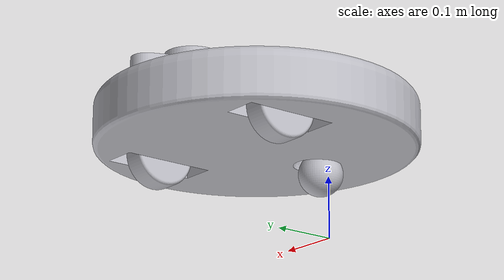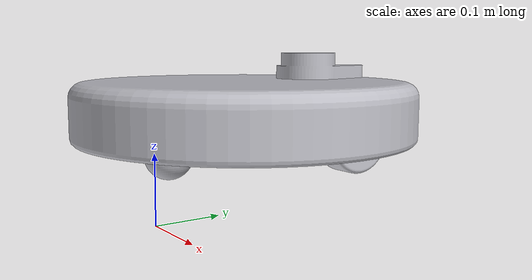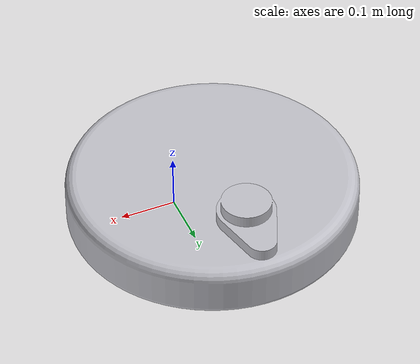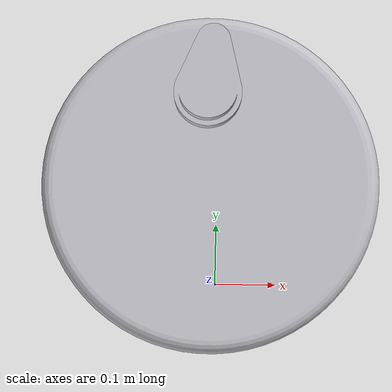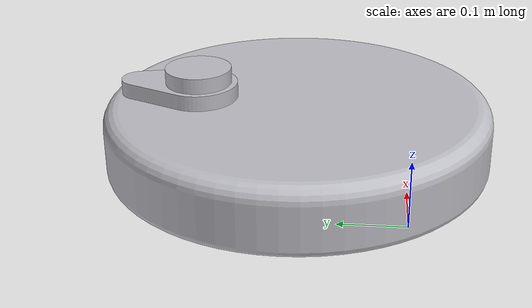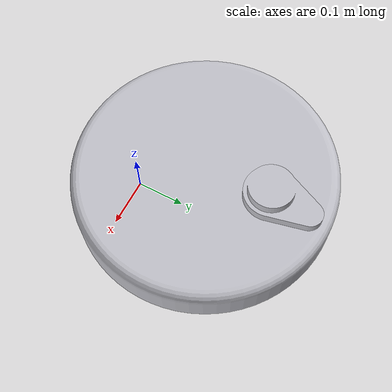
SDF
<?xml version="1.0" ?>
<sdf version='1.7'>
  <model name='badbot'>
    <link name="base_footprint"/>
    <link name='base_link'>
      <inertial>
        <pose>-0.010539 0.150003 0.152056 0 -0 0</pose>
        <mass>29.6869</mass>
        <inertia>
          <ixx>0.0123822</ixx>
          <ixy>0.000223118</ixy>
          <ixz>0.000103646</ixz>
          <iyy>0.0129477</iyy>
          <iyz>-0.00190386</iyz>
          <izz>0.0220306</izz>
        </inertia>
      </inertial>
      <collision name='base_link_collision'>
        <pose>0 0 0 0 -0 0</pose>
        <geometry>
          <mesh>
            <scale>0.001 0.001 0.001</scale>
            <uri>file:///home/mayank/BadBot/BadBot_ros2_ws/install/BadBot_description/share/BadBot_description/meshes/base_link.stl</uri>
          </mesh>
        </geometry>
        <surface>
          <contact>
            <ode/>
          </contact>
          <friction>
            <ode>
              <mu>0.2</mu>
              <mu2>0.2</mu2>
            </ode>
          </friction>
        </surface>
      </collision>
      <collision name='base_link_fixed_joint_lump__left_shaft_1_collision_1'>
        <pose>0 0 0 0 -0 0</pose>
        <geometry>
          <mesh>
            <scale>0.001 0.001 0.001</scale>
            <uri>file:///home/mayank/BadBot/BadBot_ros2_ws/install/BadBot_description/share/BadBot_description/meshes/left_shaft_1.stl</uri>
          </mesh>
        </geometry>
        <surface>
          <contact>
            <ode/>
          </contact>
          <friction>
            <ode>
              <mu>0.2</mu>
              <mu2>0.2</mu2>
            </ode>
          </friction>
        </surface>
      </collision>
      <collision name='base_link_fixed_joint_lump__lidar_1_collision_2'>
        <pose>0 0 0 0 -0 0</pose>
        <geometry>
          <mesh>
            <scale>0.001 0.001 0.001</scale>
            <uri>file:///home/mayank/BadBot/BadBot_ros2_ws/install/BadBot_description/share/BadBot_description/meshes/lidar_1.stl</uri>
          </mesh>
        </geometry>
        <surface>
          <contact>
            <ode/>
          </contact>
          <friction>
            <ode>
              <mu>0.2</mu>
              <mu2>0.2</mu2>
            </ode>
          </friction>
        </surface>
      </collision>
      <collision name='base_link_fixed_joint_lump__right_shaft_1_collision_3'>
        <pose>0 0 0 0 -0 0</pose>
        <geometry>
          <mesh>
            <scale>0.001 0.001 0.001</scale>
            <uri>file:///home/mayank/BadBot/BadBot_ros2_ws/install/BadBot_description/share/BadBot_description/meshes/right_shaft_1.stl</uri>
          </mesh>
        </geometry>
        <surface>
          <contact>
            <ode/>
          </contact>
          <friction>
            <ode>
              <mu>0.2</mu>
              <mu2>0.2</mu2>
            </ode>
          </friction>
        </surface>
      </collision>
      <visual name='base_link_visual'>
        <pose>0 0 0 0 -0 0</pose>
        <geometry>
          <mesh>
            <scale>0.001 0.001 0.001</scale>
            <uri>file:///home/mayank/BadBot/BadBot_ros2_ws/install/BadBot_description/share/BadBot_description/meshes/base_link.stl</uri>
          </mesh>
        </geometry>
        <material>
          <script>
            <name>Gazebo/Silver</name>
            <uri>file://media/materials/scripts/gazebo.material</uri>
          </script>
        </material>
      </visual>
      <visual name='base_link_fixed_joint_lump__left_shaft_1_visual_1'>
        <pose>0 0 0 0 -0 0</pose>
        <geometry>
          <mesh>
            <scale>0.001 0.001 0.001</scale>
            <uri>file:///home/mayank/BadBot/BadBot_ros2_ws/install/BadBot_description/share/BadBot_description/meshes/left_shaft_1.stl</uri>
          </mesh>
        </geometry>
        <material>
          <script>
            <name>Gazebo/Silver</name>
            <uri>file://media/materials/scripts/gazebo.material</uri>
          </script>
        </material>
      </visual>
      <visual name='base_link_fixed_joint_lump__lidar_1_visual_2'>
        <pose>0 0 0 0 -0 0</pose>
        <geometry>
          <mesh>
            <scale>0.001 0.001 0.001</scale>
            <uri>file:///home/mayank/BadBot/BadBot_ros2_ws/install/BadBot_description/share/BadBot_description/meshes/lidar_1.stl</uri>
          </mesh>
        </geometry>
        <material>
          <script>
            <name>Gazebo/Silver</name>
            <uri>file://media/materials/scripts/gazebo.material</uri>
          </script>
        </material>
      </visual>
      <visual name='base_link_fixed_joint_lump__right_shaft_1_visual_3'>
        <pose>0 0 0 0 -0 0</pose>
        <geometry>
          <mesh>
            <scale>0.001 0.001 0.001</scale>
            <uri>file:///home/mayank/BadBot/BadBot_ros2_ws/install/BadBot_description/share/BadBot_description/meshes/right_shaft_1.stl</uri>
          </mesh>
        </geometry>
        <material>
          <script>
            <name>Gazebo/Silver</name>
            <uri>file://media/materials/scripts/gazebo.material</uri>
          </script>
        </material>
      </visual>
      <self_collide>1</self_collide>
      <gravity>1</gravity>
      <self_collide>1</self_collide>
      <self_collide>1</self_collide>
      <self_collide>1</self_collide>
    </link>
    <joint name='Rev7' type='revolute'>
      <pose relative_to='base_link'>-0.010481 0.035074 0.108665 0 -0 0</pose>
      <parent>base_link</parent>
      <child>caster_wheel_1</child>
      <axis>
        <xyz>0 0 -1</xyz>
        <limit>
          <lower>-1e+16</lower>
          <upper>1e+16</upper>
        </limit>
        <dynamics>
          <spring_reference>0</spring_reference>
          <spring_stiffness>0</spring_stiffness>
        </dynamics>
      </axis>
    </joint>
    <link name='caster_wheel_1'>
      <pose relative_to='Rev7'>0 0 0 0 -0 0</pose>
      <inertial>
        <pose>0 -0 -0 0 -0 0</pose>
        <mass>1.40084</mass>
        <inertia>
          <ixx>0.000686</ixx>
          <ixy>0</ixy>
          <ixz>0</ixz>
          <iyy>0.000686</iyy>
          <iyz>0</iyz>
          <izz>0.000686</izz>
        </inertia>
      </inertial>
      <collision name='caster_wheel_1_collision'>
        <pose>0.010481 -0.035074 -0.108665 0 -0 0</pose>
        <geometry>
          <mesh>
            <scale>0.001 0.001 0.001</scale>
            <uri>file:///home/mayank/BadBot/BadBot_ros2_ws/install/BadBot_description/share/BadBot_description/meshes/caster_wheel_1.stl</uri>
          </mesh>
        </geometry>
        <surface>
          <contact>
            <ode/>
          </contact>
          <friction>
            <ode>
              <mu>0.2</mu>
              <mu2>0.2</mu2>
            </ode>
          </friction>
        </surface>
      </collision>
      <visual name='caster_wheel_1_visual'>
        <pose>0.010481 -0.035074 -0.108665 0 -0 0</pose>
        <geometry>
          <mesh>
            <scale>0.001 0.001 0.001</scale>
            <uri>file:///home/mayank/BadBot/BadBot_ros2_ws/install/BadBot_description/share/BadBot_description/meshes/caster_wheel_1.stl</uri>
          </mesh>
        </geometry>
        <material>
          <script>
            <name>Gazebo/Silver</name>
            <uri>file://media/materials/scripts/gazebo.material</uri>
          </script>
        </material>
      </visual>
      <self_collide>1</self_collide>
    </link>
    <joint name='Rev10' type='revolute'>
      <pose relative_to='base_link'>-0.160481 0.226663 0.123665 0 -0 0</pose>
      <parent>base_link</parent>
      <child>left_wheel_1</child>
      <axis>
        <xyz>-1 0 0</xyz>
        <limit>
          <lower>-1e+16</lower>
          <upper>1e+16</upper>
        </limit>
        <dynamics>
          <spring_reference>0</spring_reference>
          <spring_stiffness>0</spring_stiffness>
        </dynamics>
      </axis>
    </joint>
    <link name='left_wheel_1'>
      <pose relative_to='Rev10'>0 0 0 0 -0 0</pose>
      <inertial>
        <pose>0 -0 -0 0 -0 0</pose>
        <mass>0.3854</mass>
        <inertia>
          <ixx>0.000496</ixx>
          <ixy>0</ixy>
          <ixz>0</ixz>
          <iyy>0.000299</iyy>
          <iyz>0</iyz>
          <izz>0.000299</izz>
        </inertia>
      </inertial>
      <collision name='left_wheel_1_collision'>
        <pose>0.160481 -0.226663 -0.123665 0 -0 0</pose>
        <geometry>
          <mesh>
            <scale>0.001 0.001 0.001</scale>
            <uri>file:///home/mayank/BadBot/BadBot_ros2_ws/install/BadBot_description/share/BadBot_description/meshes/left_wheel_1.stl</uri>
          </mesh>
        </geometry>
        <surface>
          <contact>
            <ode/>
          </contact>
          <friction>
            <ode>
              <mu>0.2</mu>
              <mu2>0.2</mu2>
            </ode>
          </friction>
        </surface>
      </collision>
      <visual name='left_wheel_1_visual'>
        <pose>0.160481 -0.226663 -0.123665 0 -0 0</pose>
        <geometry>
          <mesh>
            <scale>0.001 0.001 0.001</scale>
            <uri>file:///home/mayank/BadBot/BadBot_ros2_ws/install/BadBot_description/share/BadBot_description/meshes/left_wheel_1.stl</uri>
          </mesh>
        </geometry>
        <material>
          <script>
            <name>Gazebo/Silver</name>
            <uri>file://media/materials/scripts/gazebo.material</uri>
          </script>
        </material>
      </visual>
      <self_collide>1</self_collide>
    </link>
    <joint name='Rev8' type='revolute'>
      <pose relative_to='base_link'>0.139519 0.226663 0.123665 0 -0 0</pose>
      <parent>base_link</parent>
      <child>right_wheel_1</child>
      <axis>
        <xyz>-1 0 0</xyz>
        <limit>
          <lower>-1e+16</lower>
          <upper>1e+16</upper>
        </limit>
        <dynamics>
          <spring_reference>0</spring_reference>
          <spring_stiffness>0</spring_stiffness>
        </dynamics>
      </axis>
    </joint>
    <joint name="base_joint" type="fixed">
      <parent>base_footprint</parent>
      <child>base_link</child>
      <pose>0.0 0.0 0.010 0 0 0</pose>
    </joint>
    <link name='right_wheel_1'>
      <pose relative_to='Rev8'>0 0 0 0 -0 0</pose>
      <inertial>
        <pose>0 -0 -0 0 -0 0</pose>
        <mass>0.3854</mass>
        <inertia>
          <ixx>0.000496</ixx>
          <ixy>0</ixy>
          <ixz>0</ixz>
          <iyy>0.000299</iyy>
          <iyz>0</iyz>
          <izz>0.000299</izz>
        </inertia>
      </inertial>
      <collision name='right_wheel_1_collision'>
        <pose>-0.139519 -0.226663 -0.123665 0 -0 0</pose>
        <geometry>
          <mesh>
            <scale>0.001 0.001 0.001</scale>
            <uri>file:///home/mayank/BadBot/BadBot_ros2_ws/install/BadBot_description/share/BadBot_description/meshes/right_wheel_1.stl</uri>
          </mesh>
        </geometry>
        <surface>
          <contact>
            <ode/>
          </contact>
          <friction>
            <ode>
              <mu>0.2</mu>
              <mu2>0.2</mu2>
            </ode>
          </friction>
        </surface>
      </collision>
      <visual name='right_wheel_1_visual'>
        <pose>-0.139519 -0.226663 -0.123665 0 -0 0</pose>
        <geometry>
          <mesh>
            <scale>0.001 0.001 0.001</scale>
            <uri>file:///home/mayank/BadBot/BadBot_ros2_ws/install/BadBot_description/share/BadBot_description/meshes/right_wheel_1.stl</uri>
          </mesh>
        </geometry>
        <material>
          <script>
            <name>Gazebo/Silver</name>
            <uri>file://media/materials/scripts/gazebo.material</uri>
          </script>
        </material>
      </visual>
      <self_collide>1</self_collide>
    </link>
    <static>0</static>
    <plugin name='control' filename='libgazebo_ros_control.so'/>
    <plugin name="badbot_diff_drive" filename="libgazebo_ros_diff_drive.so">

      <update_rate>30</update_rate>

      <!-- wheels -->
      <left_joint>Rev10</left_joint>
      <right_joint>Rev8</right_joint>

      <!-- kinematics -->
      <wheel_separation>0.160</wheel_separation>
      <wheel_diameter>0.066</wheel_diameter>

      <!-- limits -->
      <max_wheel_torque>20</max_wheel_torque>
      <max_wheel_acceleration>1.0</max_wheel_acceleration>

      <command_topic>cmd_vel</command_topic>

      <!-- output -->
      <publish_odom>true</publish_odom>
      <publish_odom_tf>true</publish_odom_tf>
      <publish_wheel_tf>false</publish_wheel_tf>

      <odometry_topic>odom</odometry_topic>
      <odometry_frame>odom</odometry_frame>
      <robot_base_frame>base_link</robot_base_frame>

    </plugin>
    <plugin name="badbot_joint_state" filename="libgazebo_ros_joint_state_publisher.so">
      <ros>
        <remapping>~/out:=joint_states</remapping>
      </ros>
      <update_rate>30</update_rate>
      <joint_name>Rev10</joint_name>
      <joint_name>Rev8</joint_name>
    </plugin>
  </model>
</sdf>
